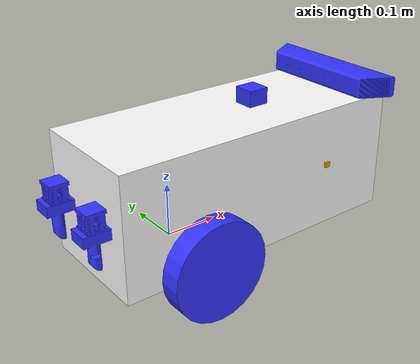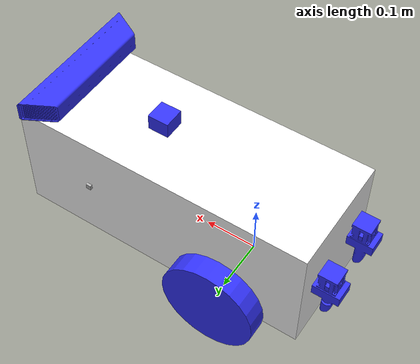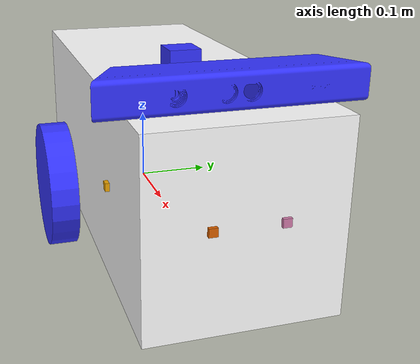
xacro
<?xml version="1.0"?>
<robot xmlns:xacro="http://www.ros.org/wiki/xacro"  name="robot">

    <xacro:include filename="robot_core.xacro" />

    <xacro:include filename="$(find ros2_automower_control)/ros2_control/ros2_automower.ros2_control.xacro" />

    <xacro:ros2_automower_ros2_control name="ros2_automower" prefix="$(arg prefix)"/>
</robot>

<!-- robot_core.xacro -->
<robot xmlns:xacro="http://www.ros.org/wiki/xacro"  name="robot">

    <xacro:include filename="inertial_macros.xacro"/>

    <material name="white">
        <color rgba="1 1 1 1" />
    </material>

    <material name="orange">
        <color rgba="1 0.3 0.1 1"/>
    </material>

    <material name="blue">
        <color rgba="0.2 0.2 1 1"/>
    </material>

    <material name="black">
        <color rgba="0 0 0 1"/>
    </material>

    <!-- BASE LINK -->

    <link name="base_link">

    </link>

    <!-- BASE_FOOTPRINT LINK -->

    <joint name="base_footprint_joint" type="fixed">
        <parent link="base_link"/>
        <child link="base_footprint"/>
        <origin xyz="0 0 0" rpy="0 0 0"/>
    </joint>

    <link name="base_footprint">
    </link>

    <!-- CHASSIS LINK -->

    <joint name="chassis_joint" type="fixed">
        <parent link="base_link"/>
        <child link="chassis"/>
        <origin xyz="-0.15499 0 -0.02125"/>
    </joint>

    <link name="chassis">
        <visual>
            <origin xyz="0.287615 0 0.114675"/>
            <geometry>
                <box size="0.57523 0.22585 0.22935"/>
            </geometry>
            <material name="white"/>
        </visual>
        <collision>
            <origin xyz="0.287615 0 0.114675"/>
            <geometry>
                <box size="0.57523 0.22585 0.22935"/>
            </geometry>
        </collision>
        <xacro:inertial_box mass="0.5" x="0.57523" y="0.22585" z="0.22935">
            <origin xyz="0.287615 0 0.114675" rpy="0 0 0"/>
        </xacro:inertial_box>
    </link>

    <gazebo reference="chassis">
        <material>Gazebo/white</material>
    </gazebo>

    <!-- LEFT WHEEL LINK -->

    <joint name="left_wheel_joint" type="continuous">
        <parent link="base_link"/>
        <child link="left_wheel"/>
        <origin xyz="0 0.137925 0" rpy="-${pi/2} 0 0" />
        <axis xyz="0 0 1"/>
    </joint>

    <link name="left_wheel">
        <visual>
            <geometry>
                <cylinder radius="0.0925" length="0.04"/>
            </geometry>
            <material name="blue"/>
        </visual>
        <collision>
            <geometry>
                <cylinder radius="0.0925" length="0.04"/>
            </geometry>
        </collision>
        <xacro:inertial_cylinder mass="0.1" length="0.04" radius="0.0925">
            <origin xyz="0 0 0" rpy="0 0 0"/>
        </xacro:inertial_cylinder>
    </link>

    <gazebo reference="left_wheel">
        <material>Gazebo/blue</material>
    </gazebo>

    <!-- RIGHT WHEEL LINK -->

    <joint name="right_wheel_joint" type="continuous">
        <parent link="base_link"/>
        <child link="right_wheel"/>
        <origin xyz="0 -0.137925 0" rpy="${pi/2} 0 0" />
        <axis xyz="0 0 -1"/>
    </joint>

    <link name="right_wheel">
        <visual>
            <geometry>
                <cylinder radius="0.0925" length="0.04"/>
            </geometry>
            <material name="blue"/>
        </visual>
        <collision>
            <geometry>
                <cylinder radius="0.0925" length="0.04"/>
            </geometry>
        </collision>
        <xacro:inertial_cylinder mass="0.1" length="0.04" radius="0.0925">
            <origin xyz="0 0 0" rpy="0 0 0"/>
        </xacro:inertial_cylinder>
    </link>

    <gazebo reference="right_wheel">
        <material>Gazebo/blue</material>
    </gazebo>

    <!-- CASTER WHEEL LINK -->

    <joint name="caster_wheel_joint" type="fixed">
        <parent link="chassis"/>
        <child link="caster_wheel"/>
        <origin xyz="0.41 0 -0.025"/>
    </joint>

    <link name="caster_wheel">
        <visual>
            <geometry>
                <sphere radius="0.05"/>
            </geometry>
            <material name="black"/>
        </visual>
        <collision>
            <geometry>
                <sphere radius="0.05"/>
            </geometry>
        </collision>
        <xacro:inertial_sphere mass="0.1" radius="0.05">
            <origin xyz="0 0 0" rpy="0 0 0"/>
        </xacro:inertial_sphere>
    </link>

    <gazebo reference="caster_wheel">
        <material>Gazebo/black</material>
        <mu1 value="0.0001"/>
        <mu2 value="0.0001"/>
    </gazebo>

    <!-- RASPBERRY PI -->

    <joint name="raspberry_pi_joint" type="fixed">
        <parent link="chassis"/>
        <child link="raspberry_pi"/>
        <origin xyz="0.29215 -0.04559 0.015"/>
    </joint>

    <link name="raspberry_pi">
        <visual>
            <geometry>
                <mesh filename="package://ros2_automower_description/meshes/pi_3b.stl"/>
            </geometry>
            <material name="blue"/>
        </visual>
    </link>

    <!-- CHARGING CONTACTS -->

    <joint name="left_charging_contact_joint" type="fixed">
        <parent link="chassis"/>
        <child link="left_charging_contact_link"/>
        <origin xyz="-0.02535 0.06 0.11647"/>
    </joint>

    <link name="left_charging_contact_link">
        <visual>
            <geometry>
                <mesh filename="package://ros2_automower_description/meshes/left_power_contact.stl"/>
            </geometry>
            <material name="blue"/>
        </visual>
        <collision>
            <geometry>
                <mesh filename="package://ros2_automower_description/meshes/left_power_contact.stl"/>
            </geometry>
        </collision>
    </link>

    <joint name="right_charging_contact_joint" type="fixed">
        <parent link="chassis"/>
        <child link="right_charging_contact_link"/>
        <origin xyz="-0.02535 -0.06 0.11647"/>
    </joint>

    <link name="right_charging_contact_link">
        <visual>
            <geometry>
                <mesh filename="package://ros2_automower_description/meshes/right_power_contact.stl"/>
            </geometry>
            <material name="blue"/>
        </visual>
        <collision>
            <geometry>
                <mesh filename="package://ros2_automower_description/meshes/right_power_contact.stl"/>
            </geometry>
        </collision>
    </link>

    <!-- SENSORS -->

    <!-- GPS -->

    <joint name="gps_joint" type="fixed">
        <parent link="chassis"/>
        <child link="gps_link"/>
        <origin xyz="0.34488 0 0.23987" />
    </joint>

    <link name="gps_link">
        <visual>
            <geometry>
                <box size="0.04 0.04 0.04"/>
            </geometry>
            <material name="blue"/>
        </visual>
    </link>

    <gazebo reference="gps_link">
        <sensor name="gps_sensor" type="gps">
            <always_on>true</always_on>
            <update_rate>1.0</update_rate>
            <plugin name="gps_controller" filename="libgazebo_ros_gps_sensor.so">
                <ros>
                    <remapping>gps_controller/out:=gps</remapping>
                </ros>
                <frame_name>gps_link</frame_name>
            </plugin>
        </sensor>
        <material>Gazebo/Grey</material>
    </gazebo>

    <!--IMU-->

    <joint name="imu_joint" type="fixed">
        <parent link="raspberry_pi"/>
        <child link="imu_link"/>
        <origin xyz="-0.02756 0.06226 0" rpy="0 0 ${pi}"/>
    </joint>

    <link name="imu_link">
        <visual>
            <geometry>
                <mesh filename="package://ros2_automower_description/meshes/GY-521_imu.stl" scale="0.1 0.1 0.1"/>
            </geometry>
            <material name="blue"/>
        </visual>
    </link>

    <gazebo reference="imu_link">
        <sensor name="br_imu" type="imu">
            <always_on>true</always_on>
            <update_rate>100</update_rate>
            <imu>
            <angular_velocity>
                <x>
                <noise type="gaussian">
                    <mean>0.0</mean>
                    <stddev>2e-4</stddev>
                </noise>
                </x>
                <y>
                <noise type="gaussian">
                    <mean>0.0</mean>
                    <stddev>2e-4</stddev>
                </noise>
                </y>
                <z>
                <noise type="gaussian">
                    <mean>0.0</mean>
                    <stddev>2e-4</stddev>
                </noise>
                </z>
            </angular_velocity>
            <linear_acceleration>
                <x>
                <noise type="gaussian">
                    <mean>0.0</mean>
                    <stddev>1.7e-2</stddev>
                </noise>
                </x>
                <y>
                <noise type="gaussian">
                    <mean>0.0</mean>
                    <stddev>1.7e-2</stddev>
                </noise>
                </y>
                <z>
                <noise type="gaussian">
                    <mean>0.0</mean>
                    <stddev>1.7e-2</stddev>
                </noise>
                </z>
            </linear_acceleration>
            </imu>
            <plugin name="bytes_imu" filename="libgazebo_ros_imu_sensor.so">
                <ros>
                    <namespace>imu</namespace>
                    <remapping>~/out:=data</remapping>
                </ros>
                <initial_orientation_as_reference>false</initial_orientation_as_reference>
            </plugin>
        </sensor>
    </gazebo>

    <!-- CAMERA -->

    <joint name="camera_joint" type="fixed">
        <axis xyz="0 1 0" />
        <origin rpy="0 0 0" xyz="0.52547 0 0.25614" />
        <parent link="chassis"/>
        <child link="camera_link"/>
    </joint>

    <link name="camera_link">
        <visual>
            <geometry>
                <mesh filename="package://ros2_automower_description/meshes/Kinect.stl"/>
            </geometry>
            <material name="blue"/>
        </visual>
    </link>

    <joint name="camera_optical_joint" type="fixed">
        <parent link="camera_link"/>
        <child link="camera_link_optical"/>
        <origin xyz="0 0 0" rpy="${-pi/2} 0 ${-pi/2}"/>
    </joint>

    <link name="camera_link_optical"></link>

    <gazebo reference="camera_link">
        <material>Gazebo/Red</material>

    <sensor name="camera" type="depth">
            <pose> 0 0 0 0 0 0 </pose>
            <visualize>true</visualize>
            <update_rate>10</update_rate>
            <camera>
                <horizontal_fov>1.089</horizontal_fov>
                <image>
                    <format>B8G8R8</format>
                    <width>640</width>
                    <height>480</height>
                </image>
                <clip>
                    <near>0.05</near>
                    <far>8.0</far>
                </clip>
            </camera>
            <plugin name="camera_controller" filename="libgazebo_ros_camera.so">
                <frame_name>camera_link_optical</frame_name>
                <min_depth>0.1</min_depth>
                <max_depth>10.0</max_depth>
            </plugin>
        </sensor>
    </gazebo>

    <!-- SONAR SENSOR FRONT RIGHT -->

    <joint name="sonar_front_right_joint" type="fixed">
        <axis xyz="0 1 0" />
        <origin rpy="0 0 0" xyz="0.41966 -0.039825 0.10134" />
        <parent link="base_link"/>
        <child link="base_sonar_front_right"/>
    </joint>
    <link name="base_sonar_front_right">
        <collision>
        <origin xyz="0 0 0" rpy="0 0 0"/>
        <geometry>
            <box size="0.01 0.01 0.01"/>
        </geometry>
        </collision>
        <visual>
        <origin xyz="0 0 0" rpy="0 0 0"/>
        <geometry>
            <box size="0.01 0.01 0.01"/>
        </geometry>
        </visual>
        <inertial>
        <mass value="1e-5" />
        <origin xyz="0 0 0" rpy="0 0 0"/>
        <inertia ixx="1e-6" ixy="0" ixz="0" iyy="1e-6" iyz="0" izz="1e-6" />
        </inertial>
    </link>

    <gazebo reference="base_sonar_front_right">
    <sensor type="ray" name="TeraRanger">
        <pose>0 0 0 0 0 0</pose>
        <visualize>true</visualize>
        <update_rate>50</update_rate>
        <ray>
            <scan>
                <horizontal>
                <samples>10</samples>
                <resolution>1</resolution>
                <min_angle>-0.14835</min_angle>
                <max_angle>0.14835</max_angle>
                </horizontal>
                <vertical>
                <samples>10</samples>
                <resolution>1</resolution>
                <min_angle>-0.14835</min_angle>
                <max_angle>0.14835</max_angle>
                </vertical>
            </scan>
            <range>
                <min>0.01</min>
                <max>2</max>
                <resolution>0.02</resolution>
            </range>
        </ray>
        <plugin filename="libgazebo_ros_range.so" name="gazebo_ros_range">
            <gaussianNoise>0.005</gaussianNoise>
            <alwaysOn>true</alwaysOn>
            <updateRate>50</updateRate>
            <topicName>sensor/sonar_front_right</topicName>
            <frameName>base_sonar_front_right</frameName>
            <fov>0.2967</fov>
        </plugin>
    </sensor>
    </gazebo>

    <!-- SONAR SENSOR FRONT RIGHT -->

    <joint name="sonar_front_left_joint" type="fixed">
        <axis xyz="0 1 0" />
        <origin rpy="0 0 0" xyz="0.41966 0.039825 0.10134" />
        <parent link="base_link"/>
        <child link="base_sonar_front_left"/>
    </joint>
    <link name="base_sonar_front_left">
        <collision>
            <origin xyz="0 0 0" rpy="0 0 0"/>
            <geometry>
                <box size="0.01 0.01 0.01"/>
            </geometry>
        </collision>
        <visual>
            <origin xyz="0 0 0" rpy="0 0 0"/>
            <geometry>
                <box size="0.01 0.01 0.01"/>
            </geometry>
        </visual>
        <inertial>
            <mass value="1e-5" />
            <origin xyz="0 0 0" rpy="0 0 0"/>
            <inertia ixx="1e-6" ixy="0" ixz="0" iyy="1e-6" iyz="0" izz="1e-6" />
        </inertial>
    </link>

    <gazebo reference="base_sonar_front_left">
    <sensor type="ray" name="TeraRanger">
        <pose>0 0 0 0 0 0</pose>
        <visualize>true</visualize>
        <update_rate>50</update_rate>
        <ray>
            <scan>
                <horizontal>
                <samples>10</samples>
                <resolution>1</resolution>
                <min_angle>-0.14835</min_angle>
                <max_angle>0.14835</max_angle>
                </horizontal>
                <vertical>
                <samples>10</samples>
                <resolution>1</resolution>
                <min_angle>-0.14835</min_angle>
                <max_angle>0.14835</max_angle>
                </vertical>
            </scan>
            <range>
                <min>0.01</min>
                <max>2</max>
                <resolution>0.02</resolution>
            </range>
        </ray>
        <plugin filename="libgazebo_ros_range.so" name="gazebo_ros_range">
            <gaussianNoise>0.005</gaussianNoise>
            <alwaysOn>true</alwaysOn>
            <updateRate>50</updateRate>
            <topicName>sensor/sonar_front_left</topicName>
            <frameName>base_sonar_front_left</frameName>
            <fov>0.2967</fov>
        </plugin>
    </sensor>
    </gazebo>

    <!-- SONAR SENSOR LEFT-->

    <joint name="sonar_left_joint" type="fixed">
    <axis xyz="0 1 0" />
    <origin rpy="0 0 ${pi/2}" xyz="0.2765 0.112925 0.10134" />
    <parent link="base_link"/>
    <child link="base_sonar_left"/>
    </joint>
    <link name="base_sonar_left">
        <collision>
        <origin xyz="0 0 0" rpy="0 0 0"/>
        <geometry>
            <box size="0.01 0.01 0.01"/>
        </geometry>
        </collision>
        <visual>
        <origin xyz="0 0 0" rpy="0 0 0"/>
        <geometry>
            <box size="0.01 0.01 0.01"/>
        </geometry>
        </visual>
        <inertial>
        <mass value="1e-5" />
        <origin xyz="0 0 0" rpy="0 0 0"/>
        <inertia ixx="1e-6" ixy="0" ixz="0" iyy="1e-6" iyz="0" izz="1e-6" />
        </inertial>
    </link>

    <gazebo reference="base_sonar_left">
    <sensor type="ray" name="TeraRanger">
        <pose>0 0 0 0 0 0</pose>
        <visualize>true</visualize>
        <update_rate>50</update_rate>
        <ray>
            <scan>
                <horizontal>
                <samples>10</samples>
                <resolution>1</resolution>
                <min_angle>-0.14835</min_angle>
                <max_angle>0.14835</max_angle>
                </horizontal>
                <vertical>
                <samples>10</samples>
                <resolution>1</resolution>
                <min_angle>-0.14835</min_angle>
                <max_angle>0.14835</max_angle>
                </vertical>
            </scan>
            <range>
                <min>0.01</min>
                <max>2</max>
                <resolution>0.02</resolution>
            </range>
        </ray>
        <plugin filename="libgazebo_ros_range.so" name="gazebo_ros_range">
            <gaussianNoise>0.005</gaussianNoise>
            <alwaysOn>true</alwaysOn>
            <updateRate>50</updateRate>
            <topicName>sensor/sonar_left</topicName>
            <frameName>base_sonar_left</frameName>
            <fov>0.2967</fov>
        </plugin>
    </sensor>
    </gazebo>

    <!-- SONAR SENSOR RIGHT-->

    <joint name="sonar_right_joint" type="fixed">
    <axis xyz="0 1 0" />
    <origin rpy="0 0 -${pi/2}" xyz="0.2765 -0.112925 0.10134" />
    <parent link="base_link"/>
    <child link="base_sonar_right"/>
    </joint>
    <link name="base_sonar_right">
        <collision>
        <origin xyz="0 0 0" rpy="0 0 0"/>
        <geometry>
            <box size="0.01 0.01 0.01"/>
        </geometry>
        </collision>
        <visual>
        <origin xyz="0 0 0" rpy="0 0 0"/>
        <geometry>
            <box size="0.01 0.01 0.01"/>
        </geometry>
        </visual>
        <inertial>
        <mass value="1e-5" />
        <origin xyz="0 0 0" rpy="0 0 0"/>
        <inertia ixx="1e-6" ixy="0" ixz="0" iyy="1e-6" iyz="0" izz="1e-6" />
        </inertial>
    </link>

    <gazebo reference="base_sonar_right">
    <sensor type="ray" name="TeraRanger">
        <pose>0 0 0 0 0 0</pose>
        <visualize>true</visualize>
        <update_rate>50</update_rate>
        <ray>
            <scan>
                <horizontal>
                <samples>10</samples>
                <resolution>1</resolution>
                <min_angle>-0.14835</min_angle>
                <max_angle>0.14835</max_angle>
                </horizontal>
                <vertical>
                <samples>10</samples>
                <resolution>1</resolution>
                <min_angle>-0.14835</min_angle>
                <max_angle>0.14835</max_angle>
                </vertical>
            </scan>
            <range>
                <min>0.01</min>
                <max>2</max>
                <resolution>0.02</resolution>
            </range>
        </ray>
        <plugin filename="libgazebo_ros_range.so" name="gazebo_ros_range">
            <gaussianNoise>0.005</gaussianNoise>
            <alwaysOn>true</alwaysOn>
            <updateRate>50</updateRate>
            <topicName>sensor/sonar_right</topicName>
            <frameName>base_sonar_right</frameName>
            <fov>0.2967</fov>
        </plugin>
    </sensor>
    </gazebo>

</robot>
